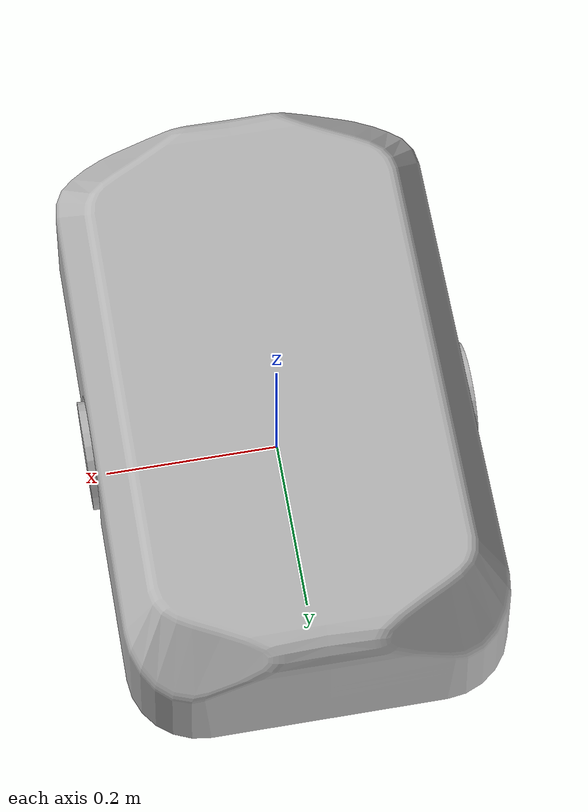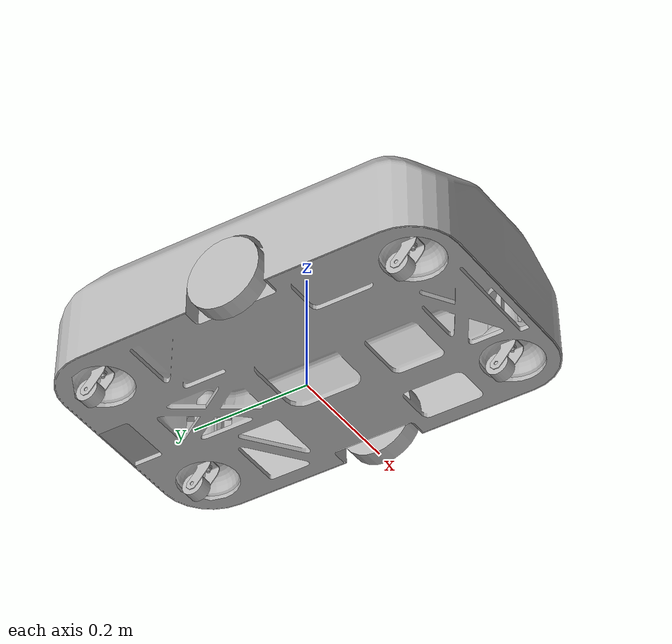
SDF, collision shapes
<?xml version="1.0"?>
<sdf version="1.12">
<model name="amr100">

  <link name="Body_link">
    <inertial>
      <inertia>
        <ixx>1.21129</ixx>
        <ixy>-0.00014</ixy>
        <ixz>0.00051</ixz>
        <iyy>0.51918</iyy>
        <iyz>-0.00435</iyz>
        <izz>1.52135</izz>
      </inertia>
      <pose>-0.000341 0.000162 0.096595 0 0 0</pose>
      <mass>30.00000</mass>
    </inertial>

    <visual name="Body">
      <pose>0 0 0.021993 0 0 0</pose>
      <geometry>
        <mesh>
          <uri>file://models/amr100/meshes/body.obj</uri>
          <scale>1 1 1</scale>
        </mesh>
      </geometry>
    </visual>

    <collision name="Body_collision">
      <pose>0 0 0.021993 0 0 0</pose>
      <geometry>
        <mesh>
          <uri>file://models/amr100/meshes/body.obj</uri>
          <scale>1 1 1</scale>
        </mesh>
      </geometry>
      <surface>
        <contact/>
      </surface>
    </collision>
  </link>

  <!-- Drive wheels LINKS -->

  <link name="Drive_wheel_R_link">
    <inertial>
      <inertia>
        <ixx>0.00220</ixx>
        <ixy>0.00000</ixy>
        <ixz>-0.00000</ixz>
        <iyy>0.00117</iyy>
        <iyz>-0.00000</iyz>
        <izz>0.00117</izz>
      </inertia>
      <pose>0.207495 0.000992 0.062279 0 0 0</pose>
      <mass>1.20000</mass>
    </inertial>

    <visual name="Drive_wheel_R">
      <pose>0.2075 0.001 0.062 0 1.5708 0</pose>
      <geometry>
        <mesh>
          <uri>file://models/amr100/meshes/drive_wheel.obj</uri>
          <scale>1 1 1</scale>
        </mesh>
      </geometry>
    </visual>

    <collision name="Drive_wheel_R_collision">
      <pose>0.2075 0.001 0.062 0 1.5708 0</pose>
      <geometry>
        <cylinder>
          <radius>0.06250</radius>
          <length>0.03000</length>
        </cylinder>
      </geometry>
      <surface>
        <contact/>
      </surface>
    </collision>
  </link>

  <link name="Drive_wheel_L_link">
    <inertial>
      <inertia>
        <ixx>0.00220</ixx>
        <ixy>0.00000</ixy>
        <ixz>-0.00000</ixz>
        <iyy>0.00117</iyy>
        <iyz>-0.00000</iyz>
        <izz>0.00117</izz>
      </inertia>
      <pose>-0.207497 0.001064 0.062144 0 0 0</pose>
      <mass>1.20000</mass>
    </inertial>

    <visual name="Drive_wheel_L">
      <pose>-0.2075 0.001 0.062 0 -1.5708 0</pose>
      <geometry>
        <mesh>
          <uri>file://models/amr100/meshes/drive_wheel.obj</uri>
          <scale>1 1 1</scale>
        </mesh>
      </geometry>
    </visual>

    <collision name="Drive_wheel_L_collision">
      <pose>-0.2075 0.001 0.062 0 -1.5708 0</pose>
      <geometry>
        <cylinder>
          <radius>0.06250</radius>
          <length>0.03000</length>
        </cylinder>
      </geometry>
      <surface>
        <contact/>
      </surface>
    </collision>
  </link>

  <!-- Suspension front right LINKS -->

  <link name="Suspension_cup_FR_link">
    <inertial>
      <inertia>
        <ixx>0.00180</ixx>
        <ixy>-0.00000</ixy>
        <ixz>0.00000</ixz>
        <iyy>0.00180</iyy>
        <iyz>-0.00000</iyz>
        <izz>0.00091</izz>
      </inertia>`
      <pose>0.139317 0.270913 0.09289 0 0 0</pose>
      <mass>0.80000</mass>
    </inertial>

    <visual name="Suspension_cup_FR">
      <pose>0.139318 0.270912 0.144495 0 0 0</pose>
      <geometry>
        <mesh>
          <uri>file://models/amr100/meshes/suspension_cup.obj</uri>
          <scale>1 1 1</scale>
        </mesh>
      </geometry>
    </visual>

    <collision name="Suspension_cup_FR_collision">
      <pose>0.139318 0.270912 0.144495 0 0 0</pose>
      <geometry>
        <mesh>
          <uri>file://models/amr100/meshes/suspension_cup.obj</uri>
          <scale>1 1 1</scale>
        </mesh>
      </geometry>
      <surface>
        <contact/>
      </surface>
    </collision>
  </link>

  <link name="Caster_axis_FR_link">
    <inertial>
      <inertia>
        <ixx>0.00008</ixx>
        <ixy>-0.00000</ixy>
        <ixz>0.00000</ixz>
        <iyy>0.00008</iyy>
        <iyz>0.00000</iyz>
        <izz>0.000001</izz>
      </inertia>
      <pose>0.13931 0.270897 0.087179 0 0 0</pose>
      <mass>0.10000</mass>
    </inertial>

    <visual name="Caster_axis_FR">
      <pose>0.139318 0.270912 0.049859 0 0 0</pose>
      <geometry>
        <mesh>
          <uri>file://models/amr100/meshes/caster_axis.obj</uri>
          <scale>1 1 1</scale>
        </mesh>
      </geometry>
    </visual>

    <collision name="Caster_axis_FR_collision">
      <pose>0.139318 0.270912 0.049859 0 0 0</pose>
      <geometry>
        <mesh>
          <uri>file://models/amr100/meshes/caster_axis.obj</uri>
          <scale>1 1 1</scale>
        </mesh>
      </geometry>
      <surface>
        <contact/>
      </surface>
    </collision>
  </link>

  <link name="Caster_bar_FR_link">
    <inertial>
      <inertia>
        <ixx>0.00001</ixx>
        <ixy>0.00000</ixy>
        <ixz>-0.00000</ixz>
        <iyy>0.00001</iyy>
        <iyz>0.00000</iyz>
        <izz>0.00001</izz>
      </inertia>
      <pose>0.139318 0.26279 0.035529 0 0 0</pose>
      <mass>0.05000</mass>
    </inertial>

    <visual name="Caster_bar_FR">
      <pose>0.139318 0.270912 0.049859 0 0 0</pose>
      <geometry>
        <mesh>
          <uri>file://models/amr100/meshes/caster_bar.obj</uri>
          <scale>1 1 1</scale>
        </mesh>
      </geometry>
    </visual>

    <collision name="Caster_bar_FR_collision">
      <pose>0.139318 0.270912 0.049859 0 0 0</pose>
      <geometry>
        <mesh>
          <uri>file://models/amr100/meshes/caster_bar.obj</uri>
          <scale>1 1 1</scale>
        </mesh>
      </geometry>
      <surface>
        <contact/>
      </surface>
    </collision>
  </link>

  <link name="Caster_wheel_FR_link">
    <inertial>
      <inertia>
        <ixx>0.00001</ixx>
        <ixy>-0.00000</ixy>
        <ixz>0.00000</ixz>
        <iyy>0.00001</iyy>
        <iyz>-0.00000</iyz>
        <izz>0.00001</izz>
      </inertia>
      <pose>0.139318 0.292502 0.018867 0 0 0</pose>
      <mass>0.05000</mass>
    </inertial>

    <visual name="Caster_wheel_FR">
      <pose>0.139318 0.292502 0.018867 0 1.5708 0</pose>
      <geometry>
        <mesh>
          <uri>file://models/amr100/meshes/caster_wheel.obj</uri>
          <scale>1 1 1</scale>
        </mesh>
      </geometry>
    </visual>

    <collision name="Caster_wheel_FR_collision">
      <pose>0.139318 0.292502 0.018867 0 1.5708 0</pose>
      <geometry>
        <cylinder>
          <radius>0.01900</radius>
          <length>0.02107</length>
        </cylinder>
      </geometry>
      <surface>
        <contact/>
      </surface>
    </collision>
  </link>

  <!-- Suspension front left LINKS -->

  <link name="Suspension_cup_FL_link">
    <inertial>
      <inertia>
        <ixx>0.00180</ixx>
        <ixy>-0.00000</ixy>
        <ixz>0.00000</ixz>
        <iyy>0.00180</iyy>
        <iyz>-0.00000</iyz>
        <izz>0.00091</izz>
      </inertia>`
      <pose>-0.139317 0.270913 0.09289 0 0 0</pose>
      <mass>0.80000</mass>
    </inertial>

    <visual name=" Suspension_cup_FL">
      <pose>-0.139318 0.270912 0.144495 0 0 0</pose>
      <geometry>
        <mesh>
          <uri>file://models/amr100/meshes/suspension_cup.obj</uri>
          <scale>1 1 1</scale>
        </mesh>
      </geometry>
    </visual>

    <collision name=" Suspension_cup_FL_collision">
      <pose>-0.139318 0.270912 0.144495 0 0 0</pose>
      <geometry>
        <mesh>
          <uri>file://models/amr100/meshes/suspension_cup.obj</uri>
          <scale>1 1 1</scale>
        </mesh>
      </geometry>
      <surface>
        <contact/>
      </surface>
    </collision>
  </link>

  <link name="Caster_axis_FL_link">
    <inertial>
      <inertia>
        <ixx>0.00008</ixx>
        <ixy>-0.00000</ixy>
        <ixz>0.00000</ixz>
        <iyy>0.00008</iyy>
        <iyz>0.00000</iyz>
        <izz>0.000001</izz>
      </inertia>
      <pose>-0.13931 0.270897 0.087179 0 0 0</pose>
      <mass>0.10000</mass>
    </inertial>

    <visual name="Caster_axis_FL">
      <pose>-0.139318 0.270912 0.049859 0 0 0</pose>
      <geometry>
        <mesh>
          <uri>file://models/amr100/meshes/caster_axis.obj</uri>
          <scale>1 1 1</scale>
        </mesh>
      </geometry>
    </visual>

    <collision name="Caster_axis_FL_collision">
      <pose>-0.139318 0.270912 0.049859 0 0 0</pose>
      <geometry>
        <mesh>
          <uri>file://models/amr100/meshes/caster_axis.obj</uri>
          <scale>1 1 1</scale>
        </mesh>
      </geometry>
      <surface>
        <contact/>
      </surface>
    </collision>
  </link>

  <link name="Caster_bar_FL_link">
    <inertial>
      <inertia>
        <ixx>0.00001</ixx>
        <ixy>0.00000</ixy>
        <ixz>-0.00000</ixz>
        <iyy>0.00001</iyy>
        <iyz>0.00000</iyz>
        <izz>0.00001</izz>
      </inertia>
      <pose>-0.139318 0.26279 0.035529 0 0 0</pose>
      <mass>0.05000</mass>
    </inertial>

    <visual name="Caster_bar_FL">
      <pose>-0.139318 0.270912 0.049859 0 0 0</pose>
      <geometry>
        <mesh>
          <uri>file://models/amr100/meshes/caster_bar.obj</uri>
          <scale>1 1 1</scale>
        </mesh>
      </geometry>
    </visual>

    <collision name="Caster_bar_FL_collision">
      <pose>-0.139318 0.270912 0.049859 0 0 0</pose>
      <geometry>
        <mesh>
          <uri>file://models/amr100/meshes/caster_bar.obj</uri>
          <scale>1 1 1</scale>
        </mesh>
      </geometry>
      <surface>
        <contact/>
      </surface>
    </collision>
  </link>

  <link name="Caster_wheel_FL_link">
    <inertial>
      <inertia>
        <ixx>0.00001</ixx>
        <ixy>-0.00000</ixy>
        <ixz>0.00000</ixz>
        <iyy>0.00001</iyy>
        <iyz>-0.00000</iyz>
        <izz>0.00001</izz>
      </inertia>
      <pose>-0.139318 0.292502 0.018867 0 0 0</pose>
      <mass>0.05000</mass>
    </inertial>

    <visual name="Caster_wheel_FL">
      <pose>-0.139318 0.292502 0.018867 0 1.5708 0</pose>
      <geometry>
        <mesh>
          <uri>file://models/amr100/meshes/caster_wheel.obj</uri>
          <scale>1 1 1</scale>
        </mesh>
      </geometry>
    </visual>

    <collision name="Caster_wheel_FL_collision">
      <pose>-0.139318 0.292502 0.018867 0 1.5708 0</pose>
      <geometry>
        <cylinder>
          <radius>0.01900</radius>
          <length>0.02107</length>
        </cylinder>
      </geometry>
      <surface>
        <contact/>
      </surface>
    </collision>
  </link>

  <!-- Suspension back right LINKS -->

  <link name="Suspension_cup_BR_link">
    <inertial>
      <inertia>
        <ixx>0.00180</ixx>
        <ixy>-0.00000</ixy>
        <ixz>0.00000</ixz>
        <iyy>0.00180</iyy>
        <iyz>-0.00000</iyz>
        <izz>0.00091</izz>
      </inertia>`
      <pose>0.138501 -0.270709 0.09289 0 0 0</pose>
      <mass>0.80000</mass>
    </inertial>

    <visual name=" Suspension_cup_BR">
      <pose>0.138502 -0.270708 0.144495 0 0 0</pose>
      <geometry>
        <mesh>
          <uri>file://models/amr100/meshes/suspension_cup.obj</uri>
          <scale>1 1 1</scale>
        </mesh>
      </geometry>
    </visual>

    <collision name=" Suspension_cup_BR_collision">
      <pose>0.138502 -0.270708 0.144495 0 0 0</pose>
      <geometry>
        <mesh>
          <uri>file://models/amr100/meshes/suspension_cup.obj</uri>
          <scale>1 1 1</scale>
        </mesh>
      </geometry>
      <surface>
        <contact/>
      </surface>
    </collision>
  </link>

  <link name="Caster_axis_BR_link">
    <inertial>
      <inertia>
        <ixx>0.00008</ixx>
        <ixy>-0.00000</ixy>
        <ixz>0.00000</ixz>
        <iyy>0.00008</iyy>
        <iyz>0.00000</iyz>
        <izz>0.000001</izz>
      </inertia>
      <pose>0.138494 -0.270693 0.087179 0 0 0</pose>
      <mass>0.10000</mass>
    </inertial>

    <visual name="Caster_axis_BR">
      <pose>0.138502 -0.270708 0.049859 0 0 0</pose>
      <geometry>
        <mesh>
          <uri>file://models/amr100/meshes/caster_axis.obj</uri>
          <scale>1 1 1</scale>
        </mesh>
      </geometry>
    </visual>

    <collision name="Caster_axis_BR_collision">
      <pose>0.138502 -0.270708 0.049859 0 0 0</pose>
      <geometry>
        <mesh>
          <uri>file://models/amr100/meshes/caster_axis.obj</uri>
          <scale>1 1 1</scale>
        </mesh>
      </geometry>
      <surface>
        <contact/>
      </surface>
    </collision>
  </link>

  <link name="Caster_bar_BR_link">
    <inertial>
      <inertia>
        <ixx>0.00001</ixx>
        <ixy>0.00000</ixy>
        <ixz>-0.00000</ixz>
        <iyy>0.00001</iyy>
        <iyz>0.00000</iyz>
        <izz>0.00001</izz>
      </inertia>
      <pose>0.138502 -0.262586 0.035529 0 0 0</pose>
      <mass>0.05000</mass>
    </inertial>

    <visual name="Caster_bar_BR">
      <pose>0.138502 -0.270708 0.049859 0 0 0</pose>
      <geometry>
        <mesh>
          <uri>file://models/amr100/meshes/caster_bar.obj</uri>
          <scale>1 1 1</scale>
        </mesh>
      </geometry>
    </visual>

    <collision name="Caster_bar_BR_collision">
      <pose>0.138502 -0.270708 0.049859 0 0 0</pose>
      <geometry>
        <mesh>
          <uri>file://models/amr100/meshes/caster_bar.obj</uri>
          <scale>1 1 1</scale>
        </mesh>
      </geometry>
      <surface>
        <contact/>
      </surface>
    </collision>
  </link>

  <link name="Caster_wheel_BR_link">
    <inertial>
      <inertia>
        <ixx>0.00001</ixx>
        <ixy>-0.00000</ixy>
        <ixz>0.00000</ixz>
        <iyy>0.00001</iyy>
        <iyz>-0.00000</iyz>
        <izz>0.00001</izz>
      </inertia>
      <pose>0.138502 -0.249118 0.018867 0 0 0</pose>
      <mass>0.05000</mass>
    </inertial>

    <visual name="Caster_wheel_BR">
      <pose>0.138502 -0.249118 0.018867 0 1.5708 0</pose>
      <geometry>
        <mesh>
          <uri>file://models/amr100/meshes/caster_wheel.obj</uri>
          <scale>1 1 1</scale>
        </mesh>
      </geometry>
    </visual>

    <collision name="Caster_wheel_BR_collision">
      <pose>0.138502 -0.249118 0.018867 0 1.5708 0</pose>
      <geometry>
        <cylinder>
          <radius>0.01900</radius>
          <length>0.02107</length>
        </cylinder>
      </geometry>
      <surface>
        <contact/>
      </surface>
    </collision>
  </link>

  <!-- Suspension back left LINKS -->

  <link name="Suspension_cup_BL_link">
    <inertial>
      <inertia>
        <ixx>0.00180</ixx>
        <ixy>-0.00000</ixy>
        <ixz>0.00000</ixz>
        <iyy>0.00180</iyy>
        <iyz>-0.00000</iyz>
        <izz>0.00091</izz>
      </inertia>`
      <pose>-0.138501 -0.270709 0.09289 0 0 0</pose>
      <mass>0.80000</mass>
    </inertial>

    <visual name=" Suspension_cup_BL">
      <pose>-0.138502 -0.270708 0.144495 0 0 0</pose>
      <geometry>
        <mesh>
          <uri>file://models/amr100/meshes/suspension_cup.obj</uri>
          <scale>1 1 1</scale>
        </mesh>
      </geometry>
    </visual>

    <collision name=" Suspension_cup_BL_collision">
      <pose>-0.138502 -0.270708 0.144495 0 0 0</pose>
      <geometry>
        <mesh>
          <uri>file://models/amr100/meshes/suspension_cup.obj</uri>
          <scale>1 1 1</scale>
        </mesh>
      </geometry>
      <surface>
        <contact/>
      </surface>
    </collision>
  </link>

  <link name="Caster_axis_BL_link">
    <inertial>
      <inertia>
        <ixx>0.00008</ixx>
        <ixy>-0.00000</ixy>
        <ixz>0.00000</ixz>
        <iyy>0.00008</iyy>
        <iyz>0.00000</iyz>
        <izz>0.000001</izz>
      </inertia>
      <pose>-0.138494 -0.270693 0.087179 0 0 0</pose>
      <mass>0.10000</mass>
    </inertial>

    <visual name="Caster_axis_BL">
      <pose>-0.138502 -0.270708 0.049859 0 0 0</pose>
      <geometry>
        <mesh>
          <uri>file://models/amr100/meshes/caster_axis.obj</uri>
          <scale>1 1 1</scale>
        </mesh>
      </geometry>
    </visual>

    <collision name="Caster_axis_BL_collision">
      <pose>-0.138502 -0.270708 0.049859 0 0 0</pose>
      <geometry>
        <mesh>
          <uri>file://models/amr100/meshes/caster_axis.obj</uri>
          <scale>1 1 1</scale>
        </mesh>
      </geometry>
      <surface>
        <contact/>
      </surface>
    </collision>
  </link>

  <link name="Caster_bar_BL_link">
    <inertial>
      <inertia>
        <ixx>0.00001</ixx>
        <ixy>0.00000</ixy>
        <ixz>-0.00000</ixz>
        <iyy>0.00001</iyy>
        <iyz>0.00000</iyz>
        <izz>0.00001</izz>
      </inertia>
      <pose>-0.138502 -0.262586 0.035529 0 0 0</pose>
      <mass>0.05000</mass>
    </inertial>

    <visual name="Caster_bar_BL">
      <pose>-0.138502 -0.270708 0.049859 0 0 0</pose>
      <geometry>
        <mesh>
          <uri>file://models/amr100/meshes/caster_bar.obj</uri>
          <scale>1 1 1</scale>
        </mesh>
      </geometry>
    </visual>

    <collision name="Caster_bar_BL_collision">
      <pose>-0.138502 -0.270708 0.049859 0 0 0</pose>
      <geometry>
        <mesh>
          <uri>file://models/amr100/meshes/caster_bar.obj</uri>
          <scale>1 1 1</scale>
        </mesh>
      </geometry>
      <surface>
        <contact/>
      </surface>
    </collision>
  </link>

  <link name="Caster_wheel_BL_link">
    <inertial>
      <inertia>
        <ixx>0.00001</ixx>
        <ixy>-0.00000</ixy>
        <ixz>0.00000</ixz>
        <iyy>0.00001</iyy>
        <iyz>-0.00000</iyz>
        <izz>0.00001</izz>
      </inertia>
      <pose>-0.138502 -0.249118 0.018867 0 0 0</pose>
      <mass>0.05000</mass>
    </inertial>

    <visual name="Caster_wheel_BL">
      <pose>-0.138502 -0.249118 0.018867 0 1.5708 0</pose>
      <geometry>
        <mesh>
          <uri>file://models/amr100/meshes/caster_wheel.obj</uri>
          <scale>1 1 1</scale>
        </mesh>
      </geometry>
    </visual>

    <collision name="Caster_wheel_BL_collision">
      <pose>-0.138502 -0.249118 0.018867 0 1.5708 0</pose>
      <geometry>
        <cylinder>
          <radius>0.01900</radius>
          <length>0.02107</length>
        </cylinder>
      </geometry>
      <surface>
        <contact/>
      </surface>
    </collision>
  </link>

  <!-- Drive wheels JOINTS -->

  <joint name="Drive_wheel_R_link_joint" type="revolute">
    <pose>0.2075 0.001 0.062 0 1.5708 0</pose>
    <parent>Body_link</parent>
    <child>Drive_wheel_R_link</child>
    <axis>
      <xyz>0 0 1</xyz>
      <limit>
        <lower>-1.79769e+308</lower>
        <upper>1.79769e+308</upper>
      </limit>
    </axis>
    <axis2/>
  </joint>

  <joint name="Drive_wheel_L_link_joint" type="revolute">
    <pose>-0.2075 0.001 0.062 0 -1.5708 0</pose>
    <parent>Body_link</parent>
    <child>Drive_wheel_L_link</child>
    <axis>
      <xyz>0 0 1</xyz>
      <limit>
        <lower>-1.79769e+308</lower>
        <upper>1.79769e+308</upper>
      </limit>
    </axis>
    <axis2/>
  </joint>

  <!-- Suspension front right JOINTS -->

  <joint name="Suspension_cup_FR_link_joint" type="fixed">
    <pose>0.139318 0.270912 0.144495 0 0 0</pose>
    <parent>Body_link</parent>
    <child>Suspension_cup_FR_link</child>
    <axis/>
    <axis2/>
  </joint>

  <joint name="Caster_axis_FR_link_joint" type="prismatic">
    <pose>0.139318 0.270912 0.144495 0 3.14159 0</pose>
    <parent>Suspension_cup_FR_link</parent>
    <child>Caster_axis_FR_link</child>
    <axis>
      <dynamics>
        <damping>240.00000</damping>
        <spring_stiffness>6070.00000</spring_stiffness>
      </dynamics>
      <limit>
        <lower>-0.02600</lower>
        <upper>0.00900</upper>
        <effort>210.00000</effort>
        <velocity>0.5</velocity>
      </limit>
      <xyz>0 0 -1</xyz>
    </axis>
    <axis2>
      <dynamics>
        <damping>240.00000</damping>
        <spring_stiffness>6070.00000</spring_stiffness>
      </dynamics>
    </axis2>
  </joint>

  <joint name="Caster_bar_FR_link_joint" type="revolute">
    <pose>0.139318 0.270912 0.049859 0 0 0</pose>
    <parent>Caster_axis_FR_link</parent>
    <child>Caster_bar_FR_link</child>
    <axis>
      <xyz>0 0 1</xyz>
      <limit>
        <lower>-1.79769e+308</lower>
        <upper>1.79769e+308</upper>
      </limit>
    </axis>
    <axis2/>
  </joint>

  <joint name="Caster_wheel_FR_link_joint" type="revolute">
    <pose>0.139318 0.292502 0.018867 0 1.5708 0</pose>
    <parent>Caster_bar_FR_link</parent>
    <child>Caster_wheel_FR_link</child>
    <axis>
      <xyz>0 0 1</xyz>
      <limit>
        <lower>-1.79769e+308</lower>
        <upper>1.79769e+308</upper>
      </limit>
    </axis>
    <axis2/>
  </joint>

  <!-- Suspension front left JOINTS -->

  <joint name="Suspension_cup_FL_link_joint" type="fixed">
    <pose>-0.139318 0.270912 0.144495 0 0 0</pose>
    <parent>Body_link</parent>
    <child>Suspension_cup_FL_link</child>
    <axis/>
    <axis2/>
  </joint>

  <joint name="Caster_axis_FL_link_joint" type="prismatic">
    <pose>-0.139318 0.270912 0.144495 0 3.14159 0</pose>
    <parent>Suspension_cup_FL_link</parent>
    <child>Caster_axis_FL_link</child>
    <axis>
      <dynamics>
        <damping>240.00000</damping>
        <spring_stiffness>6070.00000</spring_stiffness>
      </dynamics>
      <limit>
        <lower>-0.02600</lower>
        <upper>0.00900</upper>
        <effort>210.00000</effort>
        <velocity>0.5</velocity>
      </limit>
      <xyz>0 0 -1</xyz>
    </axis>
    <axis2>
      <dynamics>
        <damping>240.00000</damping>
        <spring_stiffness>6070.00000</spring_stiffness>
      </dynamics>
    </axis2>
  </joint>

  <joint name="Caster_bar_FL_link_joint" type="revolute">
    <pose>-0.139318 0.270912 0.049859 0 0 0</pose>
    <parent>Caster_axis_FL_link</parent>
    <child>Caster_bar_FL_link</child>
    <axis>
      <xyz>0 0 1</xyz>
      <limit>
        <lower>-1.79769e+308</lower>
        <upper>1.79769e+308</upper>
      </limit>
    </axis>
    <axis2/>
  </joint>

  <joint name="Caster_wheel_FL_link_joint" type="revolute">
    <pose>-0.139318 0.292502 0.018867 0 1.5708 0</pose>
    <parent>Caster_bar_FL_link</parent>
    <child>Caster_wheel_FL_link</child>
    <axis>
      <xyz>0 0 1</xyz>
      <limit>
        <lower>-1.79769e+308</lower>
        <upper>1.79769e+308</upper>
      </limit>
    </axis>
    <axis2/>
  </joint>

  <!-- Suspension back right JOINTS -->

  <joint name="Suspension_cup_BR_link_joint" type="fixed">
    <pose>0.138502 -0.270708 0.144495 0 0 0</pose>
    <parent>Body_link</parent>
    <child>Suspension_cup_BR_link</child>
    <axis/>
    <axis2/>
  </joint>

  <joint name="Caster_axis_BR_link_joint" type="prismatic">
    <pose>0.138502 -0.270708 0.144495 0 3.14159 0</pose>
    <parent>Suspension_cup_BR_link</parent>
    <child>Caster_axis_BR_link</child>
    <axis>
      <dynamics>
        <damping>240.00000</damping>
        <spring_stiffness>6070.00000</spring_stiffness>
      </dynamics>
      <limit>
        <lower>-0.02600</lower>
        <upper>0.00900</upper>
        <effort>210.00000</effort>
        <velocity>0.5</velocity>
      </limit>
      <xyz>0 0 -1</xyz>
    </axis>
    <axis2>
      <dynamics>
        <damping>240.00000</damping>
        <spring_stiffness>6070.00000</spring_stiffness>
      </dynamics>
    </axis2>
  </joint>

  <joint name="Caster_bar_BR_link_joint" type="revolute">
    <pose>0.138502 -0.270708 0.049859 0 0 0</pose>
    <parent>Caster_axis_BR_link</parent>
    <child>Caster_bar_BR_link</child>
    <axis>
      <xyz>0 0 1</xyz>
      <limit>
        <lower>-1.79769e+308</lower>
        <upper>1.79769e+308</upper>
      </limit>
    </axis>
    <axis2/>
  </joint>

  <joint name="Caster_wheel_BR_link_joint" type="revolute">
    <pose>0.138502 -0.249118 0.018867 0 1.5708 0</pose>
    <parent>Caster_bar_BR_link</parent>
    <child>Caster_wheel_BR_link</child>
    <axis>
      <xyz>0 0 1</xyz>
      <limit>
        <lower>-1.79769e+308</lower>
        <upper>1.79769e+308</upper>
      </limit>
    </axis>
    <axis2/>
  </joint>

  <!-- Suspension back left JOINTS -->

  <joint name="Suspension_cup_BL_link_joint" type="fixed">
    <pose>-0.138502 -0.270708 0.144495 0 0 0</pose>
    <parent>Body_link</parent>
    <child>Suspension_cup_BL_link</child>
    <axis/>
    <axis2/>
  </joint>

  <joint name="Caster_axis_BL_link_joint" type="prismatic">
    <pose>-0.138502 -0.270708 0.144495 0 3.14159 0</pose>
    <parent>Suspension_cup_BL_link</parent>
    <child>Caster_axis_BL_link</child>
    <axis>
      <dynamics>
        <damping>240.00000</damping>
        <spring_stiffness>6070.00000</spring_stiffness>
      </dynamics>
      <limit>
        <lower>-0.02600</lower>
        <upper>0.00900</upper>
        <effort>210.00000</effort>
        <velocity>0.5</velocity>
      </limit>
      <xyz>0 0 -1</xyz>
    </axis>
    <axis2>
      <dynamics>
        <damping>240.00000</damping>
        <spring_stiffness>6070.00000</spring_stiffness>
      </dynamics>
    </axis2>
  </joint>

  <joint name="Caster_bar_BL_link_joint" type="revolute">
    <pose>-0.138502 -0.270708 0.049859 0 0 0</pose>
    <parent>Caster_axis_BL_link</parent>
    <child>Caster_bar_BL_link</child>
    <axis>
      <xyz>0 0 1</xyz>
      <limit>
        <lower>-1.79769e+308</lower>
        <upper>1.79769e+308</upper>
      </limit>
    </axis>
    <axis2/>
  </joint>

  <joint name="Caster_wheel_BL_link_joint" type="revolute">
    <pose>-0.138502 -0.249118 0.018867 0 1.5708 0</pose>
    <parent>Caster_bar_BL_link</parent>
    <child>Caster_wheel_BL_link</child>
    <axis>
      <xyz>0 0 1</xyz>
      <limit>
        <lower>-1.79769e+308</lower>
        <upper>1.79769e+308</upper>
      </limit>
    </axis>
    <axis2/>
  </joint>

  <!-- PLUGINS -->
  <plugin
      filename="gz-sim-diff-drive-system"
      name="gz::sim::systems::DiffDrive">
      <left_joint>Drive_wheel_L_link_joint</left_joint>
      <right_joint>Drive_wheel_R_link_joint</right_joint>
      <wheel_separation>0.415</wheel_separation>
      <wheel_radius>0.0625</wheel_radius>
      <odom_publish_frequency>1</odom_publish_frequency>
      <topic>cmd_vel</topic>
  </plugin>

     <!-- Moving Forward 'W'-->
    <plugin filename="gz-sim-triggered-publisher-system"
            name="gz::sim::systems::TriggeredPublisher">
        <input type="gz.msgs.Int32" topic="/keyboard/keypress">
            <match field="data">87</match>
        </input>
        <output type="gz.msgs.Twist" topic="/cmd_vel">
            linear: {x: 0.0, y: 0.0, z: 0.0}, angular: {x: 0.0, y: 0.0, z: -3.0}
        </output>
    </plugin>

    <!-- Moving Backward 'D'-->
    <plugin filename="gz-sim-triggered-publisher-system"
            name="gz::sim::systems::TriggeredPublisher">
        <input type="gz.msgs.Int32" topic="/keyboard/keypress">
            <match field="data">83</match>
        </input>
        <output type="gz.msgs.Twist" topic="/cmd_vel">
            linear: {x: 0.0, y: 0.0, z: 0.0}, angular: {x: 0.0, y: 0.0, z: 3.0}
        </output>
    </plugin>

    <!-- Moving Left 'A'-->
    <plugin filename="gz-sim-triggered-publisher-system"
            name="gz::sim::systems::TriggeredPublisher">
        <input type="gz.msgs.Int32" topic="/keyboard/keypress">
            <match field="data">65</match>
        </input>
        <output type="gz.msgs.Twist" topic="/cmd_vel">
            linear: {x: -0.1, y: 0.0, z: 0.0}, angular: {x: 0.0, y: 0.0, z: 0.0}
        </output>
    </plugin>

    <!-- Moving Right 'D'-->
    <plugin filename="gz-sim-triggered-publisher-system"
            name="gz::sim::systems::TriggeredPublisher">
        <input type="gz.msgs.Int32" topic="/keyboard/keypress">
            <match field="data">68</match>
        </input>
        <output type="gz.msgs.Twist" topic="/cmd_vel">
            linear: {x: 0.1, y: 0.0, z: 0.0}, angular: {x: 0.0, y: 0.0, z: 0.0}
        </output>
    </plugin>

    <!-- Encoder Plugin -->
    <plugin name="gz::sim::v10::systems::EncoderPlugin" filename="libencoder_plugin.so">
      <left_joint>Drive_wheel_L_link_joint</left_joint>
      <right_joint>Drive_wheel_R_link_joint</right_joint>
      <topic>/encoder_data</topic>
      <ticks_per_rev>10000</ticks_per_rev>
    </plugin>

</model>
</sdf>
